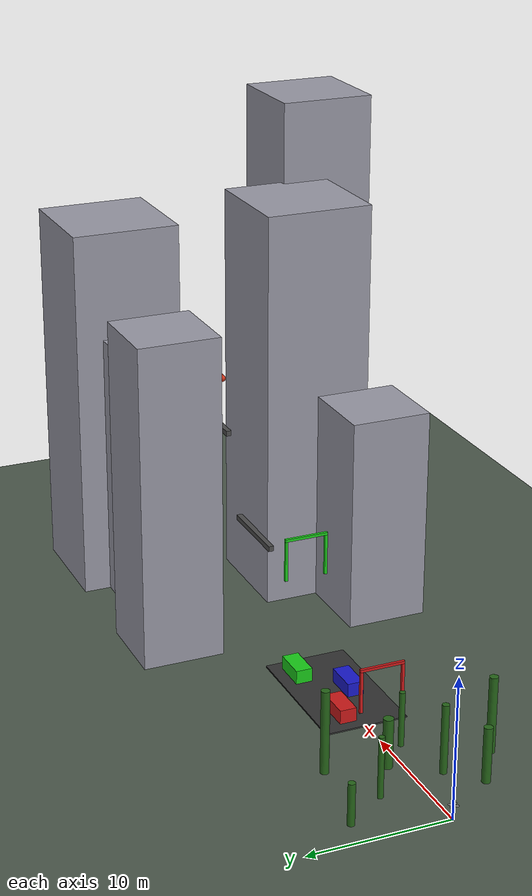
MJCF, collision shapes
<mujoco model="Skydio X2 scene - Urban Intercept (Multi-Height)">
    <include file="x2.xml"/>

    <!-- Расширяем обзор камеры, так как сцена стала длиннее -->
    <statistic center="20 0 10" extent="30" meansize=".5"/>

    <visual>
        <headlight diffuse="0.6 0.6 0.6" ambient="0.4 0.4 0.4" specular="0 0 0"/>
        <rgba haze="0.3 0.4 0.5 1"/>
        <global azimuth="-20" elevation="-20" ellipsoidinertia="true"/>
        <map znear="0.05" zfar="1000"/>
    </visual>

    <asset>
        <texture type="skybox" builtin="gradient" rgb1="0.6 0.7 0.8" rgb2="0.3 0.4 0.5" width="512" height="3072"/>
        <texture type="2d" name="groundplane" builtin="checker" mark="edge"
                 rgb1="0.35 0.4 0.35" rgb2="0.25 0.3 0.25" markrgb="0.5 0.5 0.5"
                 width="300" height="300"/>
        <material name="groundplane" texture="groundplane" texuniform="true"
                  texrepeat="50 50" reflectance="0.05"/>
        <texture type="2d" file="kral_uav_texture.png"/>
        <material name="kral_visual_mat" texture="kral_uav_texture"/>
        <mesh file="kral_uav.obj"/>
    </asset>

    <!-- КЛАССЫ ДЛЯ ПРЕПЯТСТВИЙ (Упрощают XML и управляют физикой) -->
    <default>
        <default class="tree">
            <geom type="cylinder" rgba="0.15 0.4 0.1 1" contype="1" conaffinity="1"/>
        </default>
        <default class="building">
            <geom type="box" rgba="0.6 0.6 0.65 1" contype="1" conaffinity="1"/>
        </default>
        <default class="car">
            <geom type="box" rgba="0.8 0.1 0.1 1" contype="1" conaffinity="1"/>
        </default>
        <default class="beam">
            <geom type="box" rgba="0.3 0.3 0.3 1" contype="1" conaffinity="1"/>
        </default>
    </default>

    <worldbody>
        <!-- Освещение адаптировано под большую сцену -->
        <light pos="20 20 40" dir="-1 -1 -2" directional="true" diffuse="0.8 0.8 0.8" specular="0.2 0.2 0.2"/>
        <light pos="0 0 15" dir="0 0 1" directional="true" diffuse="0.3 0.3 0.4" specular="0 0 0"/>

        <!-- Земля -->
        <geom name="floor" size="0 0 0.05" type="plane" material="groundplane" contype="1" conaffinity="1"/>

        <!-- ================= ЗОНА 1: ЛЕС (X: 2 до 10) ================= -->
        <!-- Заставляет агента лететь низко/средне, огибая стволы -->
        <body name="forest_zone" pos="0 0 0">
            <geom name="tree1" class="tree" pos="3 -4 2" size="0.3 2"/>
            <geom name="tree2" class="tree" pos="5 -2 2.5" size="0.25 2.5"/>
            <geom name="tree3" class="tree" pos="7 1 1.8" size="0.35 1.8"/>
            <geom name="tree4" class="tree" pos="4 3 2.2" size="0.2 2.2"/>
            <geom name="tree5" class="tree" pos="8 5 3" size="0.3 3"/>
            <geom name="tree6" class="tree" pos="2 6 1.5" size="0.25 1.5"/>
            <geom name="tree7" class="tree" pos="6 -6 2.8" size="0.3 2.8"/>
            <geom name="tree8" class="tree" pos="9 -1 2" size="0.2 2"/>
        </body>

        <!-- ================= ЗОНА 2: ТРАССА (X: 12 до 22) ================= -->
        <!-- Заставляет агента перелетать через машины или лавировать -->
        <body name="highway_zone" pos="0 0 0">
            <!-- Полотно дороги -->
            <geom name="road" type="box" pos="17 0 0.05" size="5 3 0.05" rgba="0.2 0.2 0.2 1" contype="1" conaffinity="1"/>
            <!-- Разметка -->
            <geom name="road_line" type="box" pos="17 0 0.06" size="4.5 0.1 0.01" rgba="1 1 0 1" contype="0" conaffinity="0"/>

            <!-- Машины (Статичные препятствия для начала) -->
            <geom name="car1" class="car" pos="14 1 0.6" size="1.2 0.6 0.5"/>
            <geom name="car2" class="car" pos="17 -1 0.6" size="1.2 0.6 0.5" rgba="0.1 0.1 0.8 1"/>
            <geom name="car3" class="car" pos="20 1.5 0.6" size="1.2 0.6 0.5" rgba="0.1 0.8 0.1 1"/>
        </body>

        <!-- ================= ЗОНА 3: ГОРОД (X: 25 до 45) ================= -->
        <!-- Заставляет агента набирать высоту и лететь в "каньонах" -->
        <body name="city_zone" pos="0 0 0">
            <!-- Здания -->
            <geom name="bldg1" class="building" pos="28 -8 8" size="3 3 8"/>
            <geom name="bldg2" class="building" pos="28 8 12" size="3 3 12"/>
            <geom name="bldg3" class="building" pos="35 -5 15" size="4 4 15"/>
            <geom name="bldg4" class="building" pos="35 6 10" size="3 3 10"/>
            <geom name="bldg5" class="building" pos="42 -9 18" size="3.5 3.5 18"/>
            <geom name="bldg6" class="building" pos="42 7 14" size="4 4 14"/>

            <!-- Парящие балки/провода (Заставляют держать конкретный коридор высоты) -->
            <geom name="beam1" class="beam" pos="31 0 6" size="3 0.2 0.2"/>
            <geom name="beam2" class="beam" pos="39 0 12" size="3 0.2 0.2"/>
        </body>

        <!-- ================= ВОРОТА И ЦЕЛЬ ================= -->
        <!-- Ворота адаптированы под новые зоны -->
        <body name="red_gate" pos="10 0 4">
            <geom type="box" pos="0 -1.5 0" size="0.1 0.1 1.5" rgba="0.8 0.1 0.1 1"/>
            <geom type="box" pos="0 1.5 0" size="0.1 0.1 1.5" rgba="0.8 0.1 0.1 1"/>
            <geom type="box" pos="0 0 1.6" size="0.1 1.6 0.1" rgba="0.8 0.1 0.1 1"/>
        </body>

        <body name="green_gate" pos="22 0 8">
            <geom type="box" pos="0 -1.5 0" size="0.1 0.1 1.5" rgba="0.1 0.8 0.1 1"/>
            <geom type="box" pos="0 1.5 0" size="0.1 0.1 1.5" rgba="0.1 0.8 0.1 1"/>
            <geom type="box" pos="0 0 1.6" size="0.1 1.6 0.1" rgba="0.1 0.8 0.1 1"/>
        </body>

        <!-- ЦЕЛЕВОЙ БПЛА (КРАЛ) - Перемещен в город, на высокую высоту -->
        <body name="target_kral" pos="38 0 16" mocap="true">
            <geom material="kral_visual_mat" mesh="kral_uav" class="visual" quat="0 0 0 1"/>
            <geom name="target_collision" type="capsule" size="0.25 0.8" pos="0 0 0"
                  quat="0.707 0 0.707 0" mass="2.0" contype="1" conaffinity="1"
                  rgba="0.8 0.2 0.1 0.6" group="3"/>
            <geom name="target_beacon" type="sphere" size="0.2" pos="0 0 0.3"
                  rgba="1 0.4 0 1" group="2"/>
            <site name="target_center" size="0.05" rgba="0 1 0 1"/>
        </body>
    </worldbody>
</mujoco>

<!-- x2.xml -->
<mujoco model="Skydio X2">
<compiler autolimits="true" assetdir="assets"/>
<!-- Уменьшаем timestep для более стабильной симуляции тяжелого и быстрого дрона -->
<option timestep="0.005" density="1.225" viscosity="1.8e-5"/>

<default>
    <default class="x2">
        <geom mass="0"/>
        <!-- УВЕЛИЧЕНА ТЯГА: с 13 до 25 Ньютонов на мотор.
             Суммарно 100Н, что дает TWR ~1.7 для дрона массой 6 кг (1кг дрон + 5кг груз) -->
        <motor ctrlrange="0 25"/>
        <mesh scale="0.01 0.01 0.01"/>

        <default class="visual">
            <geom group="2" type="mesh" contype="0" conaffinity="0"/>
        </default>

        <default class="collision">
            <geom group="3" type="box"/>
            <default class="rotor">
                <geom type="ellipsoid" size=".13 .13 .01"/>
            </default>
        </default>
        <site group="5"/>
    </default>
</default>

<asset>
    <texture type="2d" file="X2_lowpoly_texture_SpinningProps_1024.png"/>
    <material name="phong3SG" texture="X2_lowpoly_texture_SpinningProps_1024"/>
    <material name="invisible" rgba="0 0 0 0"/>
    <mesh class="x2" file="X2_lowpoly.obj"/>
</asset>

<worldbody>
    <light name="spotlight" mode="targetbodycom" target="x2" pos="0 -1 2"/>

    <body name="x2" pos="0 0 1" childclass="x2">
        <freejoint/>

        <!-- Камера слежения (оставлена для отладки) -->
        <camera name="track" pos="1 0 .5" xyaxes="0 1 0 -1 0 2" mode="trackcom"/>

        <!-- Оригинальная камера (оставлена для совместимости, но она смотрит назад) -->
        <camera name="front_camera" pos="-0.16 0 0.02" xyaxes="0 1 0 0 0 1" fovy="90" mode="fixed"/>

		<!-- ИСПРАВЛЕННАЯ FPV КАМЕРА ДЛЯ 3D RL АГЕНТА -->
		<!-- Смотрит СТРОГО ВПЕРЕД (по +X). Исправлена ошибка ориентации. -->
		<!-- Горизонтальный взгляд критичен для оценки высоты крон/зданий при обходе. -->
		<camera name="fpv_cam" pos="0.18 0 0.05" xyaxes="0 -1 0 0.2 0 1" fovy="100" mode="fixed"/>

        <site name="imu" pos="0 0 .02"/>

        <!-- Визуальная сетка дрона -->
        <geom material="phong3SG" mesh="X2_lowpoly" class="visual" quat="0 0 1 1"/>

        <!-- Геометрия столкновений корпуса -->
        <geom class="collision" size=".06 .027 .02" pos=".04 0 .02"/>
        <geom class="collision" size=".06 .027 .02" pos=".04 0 .06"/>
        <geom class="collision" size=".05 .027 .02" pos="-.07 0 .065"/>
        <geom class="collision" size=".023 .017 .01" pos="-.137 .008 .065" quat="1 0 0 1"/>

        <!-- Роторы (визуальные и физически влияющие на инерцию) -->
        <geom name="rotor1" class="rotor" pos="-.14 -.18 .05" mass=".25"/>
        <geom name="rotor2" class="rotor" pos="-.14 .18 .05" mass=".25"/>
        <geom name="rotor3" class="rotor" pos=".14 .18 .08" mass=".25"/>
        <geom name="rotor4" class="rotor" pos=".14 -.18 .08" mass=".25"/>

        <!-- Базовая невидимая масса корпуса -->
        <geom size=".16 .04 .02" pos="0 0 0.02" type="ellipsoid" mass=".325" class="visual" material="invisible"/>

        <!-- НОВАЯ ПОЛЕЗНАЯ НАГРУЗКА 5 КГ -->
        <!-- Добавляем физический объем груза под дроном. MuJoCo автоматически пересчитает центр масс и тензор инерции -->
        <geom name="payload_5kg" type="box" size="0.08 0.08 0.04" pos="0 0 -0.06" rgba="0.2 0.2 0.2 1" mass="5.0" class="collision"/>

        <!-- Точки приложения тяги моторов -->
        <site name="thrust1" pos="-.14 -.18 .05"/>
        <site name="thrust2" pos="-.14 .18 .05"/>
        <site name="thrust3" pos=".14 .18 .08"/>
        <site name="thrust4" pos=".14 -.18 .08"/>
    </body>
</worldbody>

<actuator>
    <!-- gear: первые 3 значения - сила (тяга), последние 3 - момент (реактивный момент для рыскания) -->
    <motor class="x2" name="thrust1" site="thrust1" gear="0 0 1 0 0 -.0201"/>
    <motor class="x2" name="thrust2" site="thrust2" gear="0 0 1 0 0  .0201"/>
    <motor class="x2" name="thrust3" site="thrust3" gear="0 0 1 0 0 -.0201"/>
    <motor class="x2" name="thrust4" site="thrust4" gear="0 0 1 0 0  .0201"/>
</actuator>

<sensor>
    <gyro name="body_gyro" site="imu"/>
    <accelerometer name="body_linacc" site="imu"/>
    <framequat name="body_quat" objtype="site" objname="imu"/>
</sensor>

<keyframe>
    <!-- ОБНОВЛЕННЫЙ HOVER:
         Масса дрона теперь ~6 кг. Тяга на мотор для зависания = (6 * 9.81) / 4 ≈ 14.7 Н -->
    <key name="hover" qpos="0 0 .3 1 0 0 0" ctrl="14.72 14.72 14.72 14.72"/>
</keyframe>
</mujoco>
